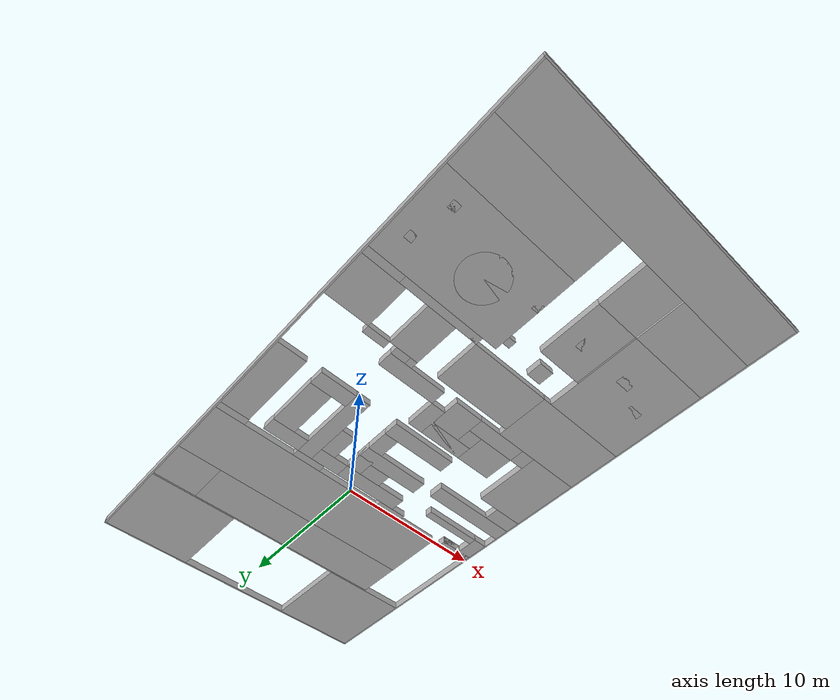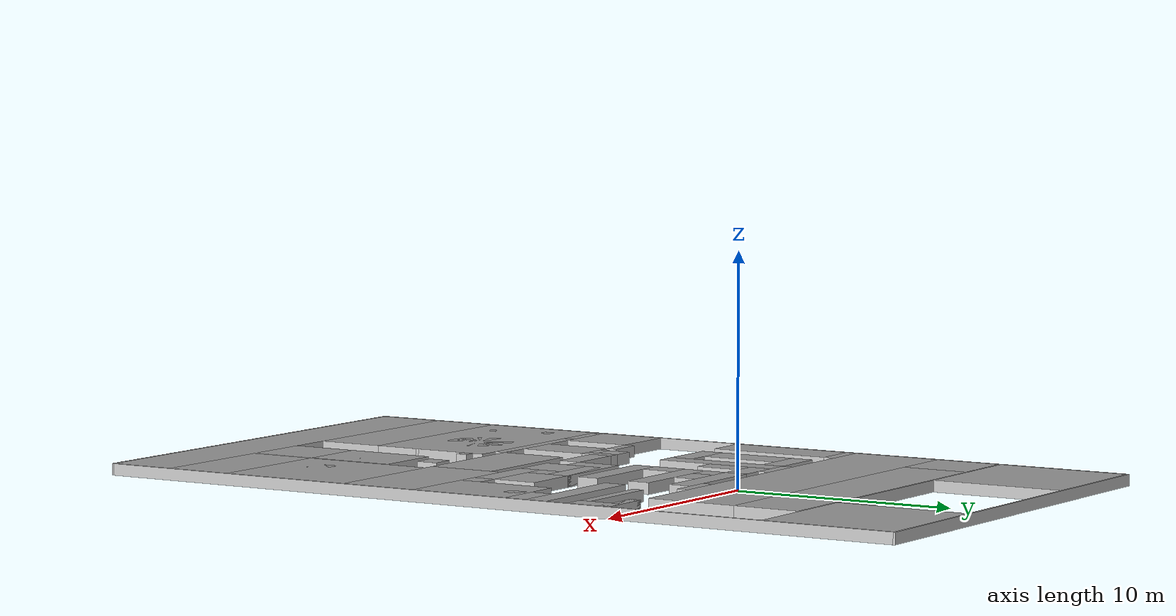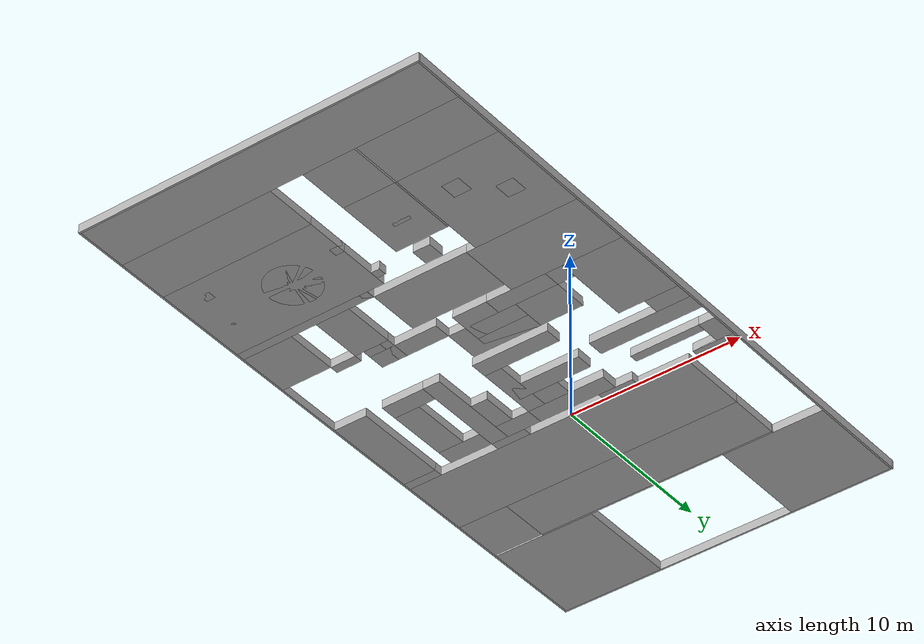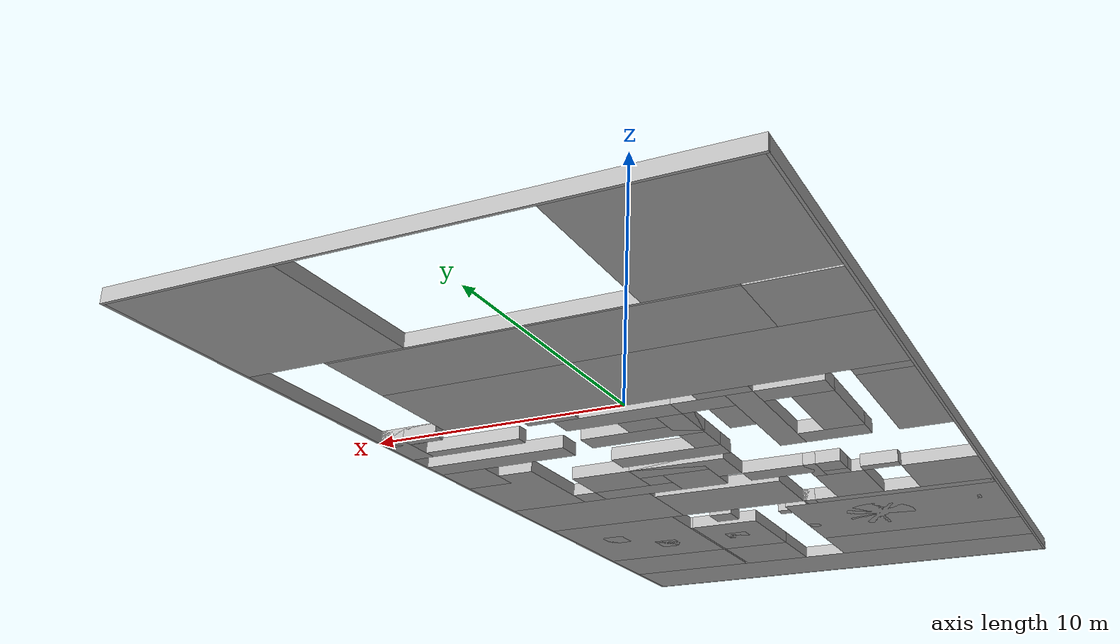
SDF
<sdf version="1.6">
  <model name="floor_plan">
    <static>true</static>
    <link name="link_1_border_bottom">
      <static>true</static>
      <pose>0 -25 0.25 0 0 0</pose>
      <visual name="border_bottom_visual">
        <pose>0 0 0 0 0 0</pose>
        <geometry>
          <mesh>
            <uri>model://floor_plan/meshes/unit_cube.stl</uri>
            <scale>20.1 0.1 0.5</scale>
            </mesh>
          </geometry>
        </visual>
      <collision name="border_bottom_collision">
        <pose>0 0 0 0 0 0</pose>
        <geometry>
          <mesh>
            <uri>model://floor_plan/meshes/unit_cube.stl</uri>
            <scale>20.1 0.1 0.5</scale>
            </mesh>
          </geometry>
        </collision>
      </link>
    <link name="link_2_border_top">
      <static>true</static>
      <pose>0 13 0.25 0 0 0</pose>
      <visual name="border_top_visual">
        <pose>0 0 0 0 0 0</pose>
        <geometry>
          <mesh>
            <uri>model://floor_plan/meshes/unit_cube.stl</uri>
            <scale>20.1 0.1 0.5</scale>
            </mesh>
          </geometry>
        </visual>
      <collision name="border_top_collision">
        <pose>0 0 0 0 0 0</pose>
        <geometry>
          <mesh>
            <uri>model://floor_plan/meshes/unit_cube.stl</uri>
            <scale>20.1 0.1 0.5</scale>
            </mesh>
          </geometry>
        </collision>
      </link>
    <link name="link_3_border_left">
      <static>true</static>
      <pose>-10 -6 0.25 0 0 0</pose>
      <visual name="border_left_visual">
        <pose>0 0 0 0 0 0</pose>
        <geometry>
          <mesh>
            <uri>model://floor_plan/meshes/unit_cube.stl</uri>
            <scale>0.1 37.9 0.5</scale>
            </mesh>
          </geometry>
        </visual>
      <collision name="border_left_collision">
        <pose>0 0 0 0 0 0</pose>
        <geometry>
          <mesh>
            <uri>model://floor_plan/meshes/unit_cube.stl</uri>
            <scale>0.1 37.9 0.5</scale>
            </mesh>
          </geometry>
        </collision>
      </link>
    <link name="link_4_border_right">
      <static>true</static>
      <pose>10 -6 0.25 0 0 0</pose>
      <visual name="border_right_visual">
        <pose>0 0 0 0 0 0</pose>
        <geometry>
          <mesh>
            <uri>model://floor_plan/meshes/unit_cube.stl</uri>
            <scale>0.1 37.9 0.5</scale>
            </mesh>
          </geometry>
        </visual>
      <collision name="border_right_collision">
        <pose>0 0 0 0 0 0</pose>
        <geometry>
          <mesh>
            <uri>model://floor_plan/meshes/unit_cube.stl</uri>
            <scale>0.1 37.9 0.5</scale>
            </mesh>
          </geometry>
        </collision>
      </link>
    <link name="link_5_top_left_col">
      <static>true</static>
      <pose>-6.975 10 0.25 0 0 0</pose>
      <visual name="top_left_col_visual">
        <pose>0 0 0 0 0 0</pose>
        <geometry>
          <mesh>
            <uri>model://floor_plan/meshes/unit_cube.stl</uri>
            <scale>5.95 5.9 0.5</scale>
            </mesh>
          </geometry>
        </visual>
      <collision name="top_left_col_collision">
        <pose>0 0 0 0 0 0</pose>
        <geometry>
          <mesh>
            <uri>model://floor_plan/meshes/unit_cube.stl</uri>
            <scale>5.95 5.9 0.5</scale>
            </mesh>
          </geometry>
        </collision>
      </link>
    <link name="link_6_top_right_col">
      <static>true</static>
      <pose>6.975 10 0.25 0 0 0</pose>
      <visual name="top_right_col_visual">
        <pose>0 0 0 0 0 0</pose>
        <geometry>
          <mesh>
            <uri>model://floor_plan/meshes/unit_cube.stl</uri>
            <scale>5.95 5.9 0.5</scale>
            </mesh>
          </geometry>
        </visual>
      <collision name="top_right_col_collision">
        <pose>0 0 0 0 0 0</pose>
        <geometry>
          <mesh>
            <uri>model://floor_plan/meshes/unit_cube.stl</uri>
            <scale>5.95 5.9 0.5</scale>
            </mesh>
          </geometry>
        </collision>
      </link>
    <link name="link_7_crossbar">
      <static>true</static>
      <pose>0 7 0.25 0 0 0</pose>
      <visual name="crossbar_visual">
        <pose>0 0 0 0 0 0</pose>
        <geometry>
          <mesh>
            <uri>model://floor_plan/meshes/unit_cube.stl</uri>
            <scale>14.0 0.1 0.5</scale>
            </mesh>
          </geometry>
        </visual>
      <collision name="crossbar_collision">
        <pose>0 0 0 0 0 0</pose>
        <geometry>
          <mesh>
            <uri>model://floor_plan/meshes/unit_cube.stl</uri>
            <scale>14.0 0.1 0.5</scale>
            </mesh>
          </geometry>
        </collision>
      </link>
    <link name="link_8_top_left_flange">
      <static>true</static>
      <pose>-8.475 5.475 0.25 0 0 0</pose>
      <visual name="top_left_flange_visual">
        <pose>0 0 0 0 0 0</pose>
        <geometry>
          <mesh>
            <uri>model://floor_plan/meshes/unit_cube.stl</uri>
            <scale>2.95 2.95 0.5</scale>
            </mesh>
          </geometry>
        </visual>
      <collision name="top_left_flange_collision">
        <pose>0 0 0 0 0 0</pose>
        <geometry>
          <mesh>
            <uri>model://floor_plan/meshes/unit_cube.stl</uri>
            <scale>2.95 2.95 0.5</scale>
            </mesh>
          </geometry>
        </collision>
      </link>
    <link name="link_9_top_center_strip">
      <static>true</static>
      <pose>0 5.475 0.25 0 0 0</pose>
      <visual name="top_center_strip_visual">
        <pose>0 0 0 0 0 0</pose>
        <geometry>
          <mesh>
            <uri>model://floor_plan/meshes/unit_cube.stl</uri>
            <scale>14.0 2.95 0.5</scale>
            </mesh>
          </geometry>
        </visual>
      <collision name="top_center_strip_collision">
        <pose>0 0 0 0 0 0</pose>
        <geometry>
          <mesh>
            <uri>model://floor_plan/meshes/unit_cube.stl</uri>
            <scale>14.0 2.95 0.5</scale>
            </mesh>
          </geometry>
        </collision>
      </link>
    <link name="link_10_mid_body_0_4000">
      <static>true</static>
      <pose>-1.475 2 0.25 0 0 0</pose>
      <visual name="mid_body_0_4000_visual">
        <pose>0 0 0 0 0 0</pose>
        <geometry>
          <mesh>
            <uri>model://floor_plan/meshes/unit_cube.stl</uri>
            <scale>16.95 4.0 0.5</scale>
            </mesh>
          </geometry>
        </visual>
      <collision name="mid_body_0_4000_collision">
        <pose>0 0 0 0 0 0</pose>
        <geometry>
          <mesh>
            <uri>model://floor_plan/meshes/unit_cube.stl</uri>
            <scale>16.95 4.0 0.5</scale>
            </mesh>
          </geometry>
        </collision>
      </link>
    <link name="link_11_right_bump">
      <static>true</static>
      <pose>8.3 -0.25 0.25 0 0 0</pose>
      <visual name="right_bump_visual">
        <pose>0 0 0 0 0 0</pose>
        <geometry>
          <mesh>
            <uri>model://floor_plan/meshes/unit_cube.stl</uri>
            <scale>1.4 0.5 0.5</scale>
            </mesh>
          </geometry>
        </visual>
      <collision name="right_bump_collision">
        <pose>0 0 0 0 0 0</pose>
        <geometry>
          <mesh>
            <uri>model://floor_plan/meshes/unit_cube.stl</uri>
            <scale>1.4 0.5 0.5</scale>
            </mesh>
          </geometry>
        </collision>
      </link>
    <link name="link_12_right_col_top">
      <static>true</static>
      <pose>9.475 -1 0.25 0 0 0</pose>
      <visual name="right_col_top_visual">
        <pose>0 0 0 0 0 0</pose>
        <geometry>
          <mesh>
            <uri>model://floor_plan/meshes/unit_cube.stl</uri>
            <scale>0.95 2.0 0.5</scale>
            </mesh>
          </geometry>
        </visual>
      <collision name="right_col_top_collision">
        <pose>0 0 0 0 0 0</pose>
        <geometry>
          <mesh>
            <uri>model://floor_plan/meshes/unit_cube.stl</uri>
            <scale>0.95 2.0 0.5</scale>
            </mesh>
          </geometry>
        </collision>
      </link>
    <link name="link_13_right_mid_bar">
      <static>true</static>
      <pose>7 -1.75 0.25 0 0 0</pose>
      <visual name="right_mid_bar_visual">
        <pose>0 0 0 0 0 0</pose>
        <geometry>
          <mesh>
            <uri>model://floor_plan/meshes/unit_cube.stl</uri>
            <scale>4.0 0.5 0.5</scale>
            </mesh>
          </geometry>
        </visual>
      <collision name="right_mid_bar_collision">
        <pose>0 0 0 0 0 0</pose>
        <geometry>
          <mesh>
            <uri>model://floor_plan/meshes/unit_cube.stl</uri>
            <scale>4.0 0.5 0.5</scale>
            </mesh>
          </geometry>
        </collision>
      </link>
    <link name="link_14_left_strip">
      <static>true</static>
      <pose>-8.975 -3.25 0.25 0 0 0</pose>
      <visual name="left_strip_visual">
        <pose>0 0 0 0 0 0</pose>
        <geometry>
          <mesh>
            <uri>model://floor_plan/meshes/unit_cube.stl</uri>
            <scale>1.95 5.5 0.5</scale>
            </mesh>
          </geometry>
        </visual>
      <collision name="left_strip_collision">
        <pose>0 0 0 0 0 0</pose>
        <geometry>
          <mesh>
            <uri>model://floor_plan/meshes/unit_cube.stl</uri>
            <scale>1.95 5.5 0.5</scale>
            </mesh>
          </geometry>
        </collision>
      </link>
    <link name="link_15_y_neg500_left">
      <static>true</static>
      <pose>-8.975 -0.25 0.25 0 0 0</pose>
      <visual name="y_neg500_left_visual">
        <pose>0 0 0 0 0 0</pose>
        <geometry>
          <mesh>
            <uri>model://floor_plan/meshes/unit_cube.stl</uri>
            <scale>1.95 0.5 0.5</scale>
            </mesh>
          </geometry>
        </visual>
      <collision name="y_neg500_left_collision">
        <pose>0 0 0 0 0 0</pose>
        <geometry>
          <mesh>
            <uri>model://floor_plan/meshes/unit_cube.stl</uri>
            <scale>1.95 0.5 0.5</scale>
            </mesh>
          </geometry>
        </collision>
      </link>
    <link name="link_16_y_neg500_m1">
      <static>true</static>
      <pose>-3.5 -0.25 0.25 0 0 0</pose>
      <visual name="y_neg500_m1_visual">
        <pose>0 0 0 0 0 0</pose>
        <geometry>
          <mesh>
            <uri>model://floor_plan/meshes/unit_cube.stl</uri>
            <scale>2.0 0.5 0.5</scale>
            </mesh>
          </geometry>
        </visual>
      <collision name="y_neg500_m1_collision">
        <pose>0 0 0 0 0 0</pose>
        <geometry>
          <mesh>
            <uri>model://floor_plan/meshes/unit_cube.stl</uri>
            <scale>2.0 0.5 0.5</scale>
            </mesh>
          </geometry>
        </collision>
      </link>
    <link name="link_17_y_neg500_m2">
      <static>true</static>
      <pose>3 -0.25 0.25 0 0 0</pose>
      <visual name="y_neg500_m2_visual">
        <pose>0 0 0 0 0 0</pose>
        <geometry>
          <mesh>
            <uri>model://floor_plan/meshes/unit_cube.stl</uri>
            <scale>2.0 0.5 0.5</scale>
            </mesh>
          </geometry>
        </visual>
      <collision name="y_neg500_m2_collision">
        <pose>0 0 0 0 0 0</pose>
        <geometry>
          <mesh>
            <uri>model://floor_plan/meshes/unit_cube.stl</uri>
            <scale>2.0 0.5 0.5</scale>
            </mesh>
          </geometry>
        </collision>
      </link>
    <link name="link_18_y_neg500_r">
      <static>true</static>
      <pose>8.775 -0.25 0.25 0 0 0</pose>
      <visual name="y_neg500_r_visual">
        <pose>0 0 0 0 0 0</pose>
        <geometry>
          <mesh>
            <uri>model://floor_plan/meshes/unit_cube.stl</uri>
            <scale>2.35 0.5 0.5</scale>
            </mesh>
          </geometry>
        </visual>
      <collision name="y_neg500_r_collision">
        <pose>0 0 0 0 0 0</pose>
        <geometry>
          <mesh>
            <uri>model://floor_plan/meshes/unit_cube.stl</uri>
            <scale>2.35 0.5 0.5</scale>
            </mesh>
          </geometry>
        </collision>
      </link>
    <link name="link_19_D_top">
      <static>true</static>
      <pose>-5.75 -1 0.25 0 0 0</pose>
      <visual name="D_top_visual">
        <pose>0 0 0 0 0 0</pose>
        <geometry>
          <mesh>
            <uri>model://floor_plan/meshes/unit_cube.stl</uri>
            <scale>2.5 1.0 0.5</scale>
            </mesh>
          </geometry>
        </visual>
      <collision name="D_top_collision">
        <pose>0 0 0 0 0 0</pose>
        <geometry>
          <mesh>
            <uri>model://floor_plan/meshes/unit_cube.stl</uri>
            <scale>2.5 1.0 0.5</scale>
            </mesh>
          </geometry>
        </collision>
      </link>
    <link name="link_20_D_bottom">
      <static>true</static>
      <pose>-5.75 -5.5 0.25 0 0 0</pose>
      <visual name="D_bottom_visual">
        <pose>0 0 0 0 0 0</pose>
        <geometry>
          <mesh>
            <uri>model://floor_plan/meshes/unit_cube.stl</uri>
            <scale>2.5 1.0 0.5</scale>
            </mesh>
          </geometry>
        </visual>
      <collision name="D_bottom_collision">
        <pose>0 0 0 0 0 0</pose>
        <geometry>
          <mesh>
            <uri>model://floor_plan/meshes/unit_cube.stl</uri>
            <scale>2.5 1.0 0.5</scale>
            </mesh>
          </geometry>
        </collision>
      </link>
    <link name="link_21_P_left">
      <static>true</static>
      <pose>-4 -3.25 0.25 0 0 0</pose>
      <visual name="P_left_visual">
        <pose>0 0 0 0 0 0</pose>
        <geometry>
          <mesh>
            <uri>model://floor_plan/meshes/unit_cube.stl</uri>
            <scale>1.0 5.5 0.5</scale>
            </mesh>
          </geometry>
        </visual>
      <collision name="P_left_collision">
        <pose>0 0 0 0 0 0</pose>
        <geometry>
          <mesh>
            <uri>model://floor_plan/meshes/unit_cube.stl</uri>
            <scale>1.0 5.5 0.5</scale>
            </mesh>
          </geometry>
        </collision>
      </link>
    <link name="link_22_P_top">
      <static>true</static>
      <pose>-2.5 -1 0.25 0 0 0</pose>
      <visual name="P_top_visual">
        <pose>0 0 0 0 0 0</pose>
        <geometry>
          <mesh>
            <uri>model://floor_plan/meshes/unit_cube.stl</uri>
            <scale>2.0 1.0 0.5</scale>
            </mesh>
          </geometry>
        </visual>
      <collision name="P_top_collision">
        <pose>0 0 0 0 0 0</pose>
        <geometry>
          <mesh>
            <uri>model://floor_plan/meshes/unit_cube.stl</uri>
            <scale>2.0 1.0 0.5</scale>
            </mesh>
          </geometry>
        </collision>
      </link>
    <link name="link_23_P_mid">
      <static>true</static>
      <pose>-3 -2.5 0.25 0 0 0</pose>
      <visual name="P_mid_visual">
        <pose>0 0 0 0 0 0</pose>
        <geometry>
          <mesh>
            <uri>model://floor_plan/meshes/unit_cube.stl</uri>
            <scale>1.0 2.0 0.5</scale>
            </mesh>
          </geometry>
        </visual>
      <collision name="P_mid_collision">
        <pose>0 0 0 0 0 0</pose>
        <geometry>
          <mesh>
            <uri>model://floor_plan/meshes/unit_cube.stl</uri>
            <scale>1.0 2.0 0.5</scale>
            </mesh>
          </geometry>
        </collision>
      </link>
    <link name="link_24_S_top">
      <static>true</static>
      <pose>0.75 -1 0.25 0 0 0</pose>
      <visual name="S_top_visual">
        <pose>0 0 0 0 0 0</pose>
        <geometry>
          <mesh>
            <uri>model://floor_plan/meshes/unit_cube.stl</uri>
            <scale>4.5 1.0 0.5</scale>
            </mesh>
          </geometry>
        </visual>
      <collision name="S_top_collision">
        <pose>0 0 0 0 0 0</pose>
        <geometry>
          <mesh>
            <uri>model://floor_plan/meshes/unit_cube.stl</uri>
            <scale>4.5 1.0 0.5</scale>
            </mesh>
          </geometry>
        </collision>
      </link>
    <link name="link_25_S_mid">
      <static>true</static>
      <pose>0.75 -3 0.25 0 0 0</pose>
      <visual name="S_mid_visual">
        <pose>0 0 0 0 0 0</pose>
        <geometry>
          <mesh>
            <uri>model://floor_plan/meshes/unit_cube.stl</uri>
            <scale>4.5 1.0 0.5</scale>
            </mesh>
          </geometry>
        </visual>
      <collision name="S_mid_collision">
        <pose>0 0 0 0 0 0</pose>
        <geometry>
          <mesh>
            <uri>model://floor_plan/meshes/unit_cube.stl</uri>
            <scale>4.5 1.0 0.5</scale>
            </mesh>
          </geometry>
        </collision>
      </link>
    <link name="link_26_S_bottom">
      <static>true</static>
      <pose>0.75 -5.5 0.25 0 0 0</pose>
      <visual name="S_bottom_visual">
        <pose>0 0 0 0 0 0</pose>
        <geometry>
          <mesh>
            <uri>model://floor_plan/meshes/unit_cube.stl</uri>
            <scale>4.5 1.0 0.5</scale>
            </mesh>
          </geometry>
        </visual>
      <collision name="S_bottom_collision">
        <pose>0 0 0 0 0 0</pose>
        <geometry>
          <mesh>
            <uri>model://floor_plan/meshes/unit_cube.stl</uri>
            <scale>4.5 1.0 0.5</scale>
            </mesh>
          </geometry>
        </collision>
      </link>
    <link name="link_27_right_block_lo">
      <static>true</static>
      <pose>6.725 -11.25 0.25 0 0 0</pose>
      <visual name="right_block_lo_visual">
        <pose>0 0 0 0 0 0</pose>
        <geometry>
          <mesh>
            <uri>model://floor_plan/meshes/unit_cube.stl</uri>
            <scale>6.45 3.5 0.5</scale>
            </mesh>
          </geometry>
        </visual>
      <collision name="right_block_lo_collision">
        <pose>0 0 0 0 0 0</pose>
        <geometry>
          <mesh>
            <uri>model://floor_plan/meshes/unit_cube.stl</uri>
            <scale>6.45 3.5 0.5</scale>
            </mesh>
          </geometry>
        </collision>
      </link>
    <link name="link_28_right_block_hi">
      <static>true</static>
      <pose>8.225 -7.25 0.25 0 0 0</pose>
      <visual name="right_block_hi_visual">
        <pose>0 0 0 0 0 0</pose>
        <geometry>
          <mesh>
            <uri>model://floor_plan/meshes/unit_cube.stl</uri>
            <scale>3.45 4.5 0.5</scale>
            </mesh>
          </geometry>
        </visual>
      <collision name="right_block_hi_collision">
        <pose>0 0 0 0 0 0</pose>
        <geometry>
          <mesh>
            <uri>model://floor_plan/meshes/unit_cube.stl</uri>
            <scale>3.45 4.5 0.5</scale>
            </mesh>
          </geometry>
        </collision>
      </link>
    <link name="link_29_right_stair_bar">
      <static>true</static>
      <pose>6 -9 0.25 0 0 0</pose>
      <visual name="right_stair_bar_visual">
        <pose>0 0 0 0 0 0</pose>
        <geometry>
          <mesh>
            <uri>model://floor_plan/meshes/unit_cube.stl</uri>
            <scale>1.0 1.0 0.5</scale>
            </mesh>
          </geometry>
        </visual>
      <collision name="right_stair_bar_collision">
        <pose>0 0 0 0 0 0</pose>
        <geometry>
          <mesh>
            <uri>model://floor_plan/meshes/unit_cube.stl</uri>
            <scale>1.0 1.0 0.5</scale>
            </mesh>
          </geometry>
        </collision>
      </link>
    <link name="link_30_S_right_top">
      <static>true</static>
      <pose>6.975 -3.5 0.25 0 0 0</pose>
      <visual name="S_right_top_visual">
        <pose>0 0 0 0 0 0</pose>
        <geometry>
          <mesh>
            <uri>model://floor_plan/meshes/unit_cube.stl</uri>
            <scale>5.95 1.0 0.5</scale>
            </mesh>
          </geometry>
        </visual>
      <collision name="S_right_top_collision">
        <pose>0 0 0 0 0 0</pose>
        <geometry>
          <mesh>
            <uri>model://floor_plan/meshes/unit_cube.stl</uri>
            <scale>5.95 1.0 0.5</scale>
            </mesh>
          </geometry>
        </collision>
      </link>
    <link name="link_31_S_right_col">
      <static>true</static>
      <pose>8.975 -5 0.25 0 0 0</pose>
      <visual name="S_right_col_visual">
        <pose>0 0 0 0 0 0</pose>
        <geometry>
          <mesh>
            <uri>model://floor_plan/meshes/unit_cube.stl</uri>
            <scale>1.95 2.0 0.5</scale>
            </mesh>
          </geometry>
        </visual>
      <collision name="S_right_col_collision">
        <pose>0 0 0 0 0 0</pose>
        <geometry>
          <mesh>
            <uri>model://floor_plan/meshes/unit_cube.stl</uri>
            <scale>1.95 2.0 0.5</scale>
            </mesh>
          </geometry>
        </collision>
      </link>
    <link name="link_32_step1">
      <static>true</static>
      <pose>3.75 -9 0.25 0 0 0</pose>
      <visual name="step1_visual">
        <pose>0 0 0 0 0 0</pose>
        <geometry>
          <mesh>
            <uri>model://floor_plan/meshes/unit_cube.stl</uri>
            <scale>3.5 1.0 0.5</scale>
            </mesh>
          </geometry>
        </visual>
      <collision name="step1_collision">
        <pose>0 0 0 0 0 0</pose>
        <geometry>
          <mesh>
            <uri>model://floor_plan/meshes/unit_cube.stl</uri>
            <scale>3.5 1.0 0.5</scale>
            </mesh>
          </geometry>
        </collision>
      </link>
    <link name="link_33_step2">
      <static>true</static>
      <pose>4.25 -7.5 0.25 0 0 0</pose>
      <visual name="step2_visual">
        <pose>0 0 0 0 0 0</pose>
        <geometry>
          <mesh>
            <uri>model://floor_plan/meshes/unit_cube.stl</uri>
            <scale>2.5 2.0 0.5</scale>
            </mesh>
          </geometry>
        </visual>
      <collision name="step2_collision">
        <pose>0 0 0 0 0 0</pose>
        <geometry>
          <mesh>
            <uri>model://floor_plan/meshes/unit_cube.stl</uri>
            <scale>2.5 2.0 0.5</scale>
            </mesh>
          </geometry>
        </collision>
      </link>
    <link name="link_34_step3">
      <static>true</static>
      <pose>1 -8.5 0.25 0 0 0</pose>
      <visual name="step3_visual">
        <pose>0 0 0 0 0 0</pose>
        <geometry>
          <mesh>
            <uri>model://floor_plan/meshes/unit_cube.stl</uri>
            <scale>2.0 2.0 0.5</scale>
            </mesh>
          </geometry>
        </visual>
      <collision name="step3_collision">
        <pose>0 0 0 0 0 0</pose>
        <geometry>
          <mesh>
            <uri>model://floor_plan/meshes/unit_cube.stl</uri>
            <scale>2.0 2.0 0.5</scale>
            </mesh>
          </geometry>
        </collision>
      </link>
    <link name="link_35_step4">
      <static>true</static>
      <pose>1.5 -7 0.25 0 0 0</pose>
      <visual name="step4_visual">
        <pose>0 0 0 0 0 0</pose>
        <geometry>
          <mesh>
            <uri>model://floor_plan/meshes/unit_cube.stl</uri>
            <scale>3.0 1.0 0.5</scale>
            </mesh>
          </geometry>
        </visual>
      <collision name="step4_collision">
        <pose>0 0 0 0 0 0</pose>
        <geometry>
          <mesh>
            <uri>model://floor_plan/meshes/unit_cube.stl</uri>
            <scale>3.0 1.0 0.5</scale>
            </mesh>
          </geometry>
        </collision>
      </link>
    <link name="link_36_low_left_a">
      <static>true</static>
      <pose>-8.725 -13.25 0.25 0 0 0</pose>
      <visual name="low_left_a_visual">
        <pose>0 0 0 0 0 0</pose>
        <geometry>
          <mesh>
            <uri>model://floor_plan/meshes/unit_cube.stl</uri>
            <scale>2.45 0.5 0.5</scale>
            </mesh>
          </geometry>
        </visual>
      <collision name="low_left_a_collision">
        <pose>0 0 0 0 0 0</pose>
        <geometry>
          <mesh>
            <uri>model://floor_plan/meshes/unit_cube.stl</uri>
            <scale>2.45 0.5 0.5</scale>
            </mesh>
          </geometry>
        </collision>
      </link>
    <link name="link_37_low_left_b">
      <static>true</static>
      <pose>-8.475 -11.5 0.25 0 0 0</pose>
      <visual name="low_left_b_visual">
        <pose>0 0 0 0 0 0</pose>
        <geometry>
          <mesh>
            <uri>model://floor_plan/meshes/unit_cube.stl</uri>
            <scale>2.95 3.0 0.5</scale>
            </mesh>
          </geometry>
        </visual>
      <collision name="low_left_b_collision">
        <pose>0 0 0 0 0 0</pose>
        <geometry>
          <mesh>
            <uri>model://floor_plan/meshes/unit_cube.stl</uri>
            <scale>2.95 3.0 0.5</scale>
            </mesh>
          </geometry>
        </collision>
      </link>
    <link name="link_38_low_mid_b">
      <static>true</static>
      <pose>-4.5 -11.5 0.25 0 0 0</pose>
      <visual name="low_mid_b_visual">
        <pose>0 0 0 0 0 0</pose>
        <geometry>
          <mesh>
            <uri>model://floor_plan/meshes/unit_cube.stl</uri>
            <scale>2.0 3.0 0.5</scale>
            </mesh>
          </geometry>
        </visual>
      <collision name="low_mid_b_collision">
        <pose>0 0 0 0 0 0</pose>
        <geometry>
          <mesh>
            <uri>model://floor_plan/meshes/unit_cube.stl</uri>
            <scale>2.0 3.0 0.5</scale>
            </mesh>
          </geometry>
        </collision>
      </link>
    <link name="link_39_low_right_lo">
      <static>true</static>
      <pose>0.75 -11.5 0.25 0 0 0</pose>
      <visual name="low_right_lo_visual">
        <pose>0 0 0 0 0 0</pose>
        <geometry>
          <mesh>
            <uri>model://floor_plan/meshes/unit_cube.stl</uri>
            <scale>5.5 3.0 0.5</scale>
            </mesh>
          </geometry>
        </visual>
      <collision name="low_right_lo_collision">
        <pose>0 0 0 0 0 0</pose>
        <geometry>
          <mesh>
            <uri>model://floor_plan/meshes/unit_cube.stl</uri>
            <scale>5.5 3.0 0.5</scale>
            </mesh>
          </geometry>
        </collision>
      </link>
    <link name="link_40_low_step_r">
      <static>true</static>
      <pose>-2.25 -13.25 0.25 0 0 0</pose>
      <visual name="low_step_r_visual">
        <pose>0 0 0 0 0 0</pose>
        <geometry>
          <mesh>
            <uri>model://floor_plan/meshes/unit_cube.stl</uri>
            <scale>0.5 0.5 0.5</scale>
            </mesh>
          </geometry>
        </visual>
      <collision name="low_step_r_collision">
        <pose>0 0 0 0 0 0</pose>
        <geometry>
          <mesh>
            <uri>model://floor_plan/meshes/unit_cube.stl</uri>
            <scale>0.5 0.5 0.5</scale>
            </mesh>
          </geometry>
        </collision>
      </link>
    <link name="link_41_step_conn">
      <static>true</static>
      <pose>-6.25 -9.75 0.25 0 0 0</pose>
      <visual name="step_conn_visual">
        <pose>0 0 0 0 0 0</pose>
        <geometry>
          <mesh>
            <uri>model://floor_plan/meshes/unit_cube.stl</uri>
            <scale>1.5 0.5 0.5</scale>
            </mesh>
          </geometry>
        </visual>
      <collision name="step_conn_collision">
        <pose>0 0 0 0 0 0</pose>
        <geometry>
          <mesh>
            <uri>model://floor_plan/meshes/unit_cube.stl</uri>
            <scale>1.5 0.5 0.5</scale>
            </mesh>
          </geometry>
        </collision>
      </link>
    <link name="link_42_step_conn2">
      <static>true</static>
      <pose>-4.5 -9.75 0.25 0 0 0</pose>
      <visual name="step_conn2_visual">
        <pose>0 0 0 0 0 0</pose>
        <geometry>
          <mesh>
            <uri>model://floor_plan/meshes/unit_cube.stl</uri>
            <scale>1.0 0.5 0.5</scale>
            </mesh>
          </geometry>
        </visual>
      <collision name="step_conn2_collision">
        <pose>0 0 0 0 0 0</pose>
        <geometry>
          <mesh>
            <uri>model://floor_plan/meshes/unit_cube.stl</uri>
            <scale>1.0 0.5 0.5</scale>
            </mesh>
          </geometry>
        </collision>
      </link>
    <link name="link_43_step_v">
      <static>true</static>
      <pose>-3.75 -9.25 0.25 0 0 0</pose>
      <visual name="step_v_visual">
        <pose>0 0 0 0 0 0</pose>
        <geometry>
          <mesh>
            <uri>model://floor_plan/meshes/unit_cube.stl</uri>
            <scale>0.5 1.5 0.5</scale>
            </mesh>
          </geometry>
        </visual>
      <collision name="step_v_collision">
        <pose>0 0 0 0 0 0</pose>
        <geometry>
          <mesh>
            <uri>model://floor_plan/meshes/unit_cube.stl</uri>
            <scale>0.5 1.5 0.5</scale>
            </mesh>
          </geometry>
        </collision>
      </link>
    <link name="link_44_mid_bar">
      <static>true</static>
      <pose>-3 -9 0.25 0 0 0</pose>
      <visual name="mid_bar_visual">
        <pose>0 0 0 0 0 0</pose>
        <geometry>
          <mesh>
            <uri>model://floor_plan/meshes/unit_cube.stl</uri>
            <scale>4.0 1.0 0.5</scale>
            </mesh>
          </geometry>
        </visual>
      <collision name="mid_bar_collision">
        <pose>0 0 0 0 0 0</pose>
        <geometry>
          <mesh>
            <uri>model://floor_plan/meshes/unit_cube.stl</uri>
            <scale>4.0 1.0 0.5</scale>
            </mesh>
          </geometry>
        </collision>
      </link>
    <link name="link_45_mid_lo">
      <static>true</static>
      <pose>1 -7.5 0.25 0 0 0</pose>
      <visual name="mid_lo_visual">
        <pose>0 0 0 0 0 0</pose>
        <geometry>
          <mesh>
            <uri>model://floor_plan/meshes/unit_cube.stl</uri>
            <scale>4.0 2.0 0.5</scale>
            </mesh>
          </geometry>
        </visual>
      <collision name="mid_lo_collision">
        <pose>0 0 0 0 0 0</pose>
        <geometry>
          <mesh>
            <uri>model://floor_plan/meshes/unit_cube.stl</uri>
            <scale>4.0 2.0 0.5</scale>
            </mesh>
          </geometry>
        </collision>
      </link>
    <link name="link_46_bot_full_strip">
      <static>true</static>
      <pose>0 -23.475 0.25 0 0 0</pose>
      <visual name="bot_full_strip_visual">
        <pose>0 0 0 0 0 0</pose>
        <geometry>
          <mesh>
            <uri>model://floor_plan/meshes/unit_cube.stl</uri>
            <scale>19.9 2.95 0.5</scale>
            </mesh>
          </geometry>
        </visual>
      <collision name="bot_full_strip_collision">
        <pose>0 0 0 0 0 0</pose>
        <geometry>
          <mesh>
            <uri>model://floor_plan/meshes/unit_cube.stl</uri>
            <scale>19.9 2.95 0.5</scale>
            </mesh>
          </geometry>
        </collision>
      </link>
    <link name="link_47_bot_left">
      <static>true</static>
      <pose>-5.475 -20.5 0.25 0 0 0</pose>
      <visual name="bot_left_visual">
        <pose>0 0 0 0 0 0</pose>
        <geometry>
          <mesh>
            <uri>model://floor_plan/meshes/unit_cube.stl</uri>
            <scale>8.95 3.0 0.5</scale>
            </mesh>
          </geometry>
        </visual>
      <collision name="bot_left_collision">
        <pose>0 0 0 0 0 0</pose>
        <geometry>
          <mesh>
            <uri>model://floor_plan/meshes/unit_cube.stl</uri>
            <scale>8.95 3.0 0.5</scale>
            </mesh>
          </geometry>
        </collision>
      </link>
    <link name="link_48_bot_mid_right">
      <static>true</static>
      <pose>2.432 -20.5 0.25 0 0 0</pose>
      <visual name="bot_mid_right_visual">
        <pose>0 0 0 0 0 0</pose>
        <geometry>
          <mesh>
            <uri>model://floor_plan/meshes/unit_cube.stl</uri>
            <scale>3.035 3.0 0.5</scale>
            </mesh>
          </geometry>
        </visual>
      <collision name="bot_mid_right_collision">
        <pose>0 0 0 0 0 0</pose>
        <geometry>
          <mesh>
            <uri>model://floor_plan/meshes/unit_cube.stl</uri>
            <scale>3.035 3.0 0.5</scale>
            </mesh>
          </geometry>
        </collision>
      </link>
    <link name="link_49_bot_right_1">
      <static>true</static>
      <pose>7 -20.5 0.25 0 0 0</pose>
      <visual name="bot_right_1_visual">
        <pose>0 0 0 0 0 0</pose>
        <geometry>
          <mesh>
            <uri>model://floor_plan/meshes/unit_cube.stl</uri>
            <scale>5.9 3.0 0.5</scale>
            </mesh>
          </geometry>
        </visual>
      <collision name="bot_right_1_collision">
        <pose>0 0 0 0 0 0</pose>
        <geometry>
          <mesh>
            <uri>model://floor_plan/meshes/unit_cube.stl</uri>
            <scale>5.9 3.0 0.5</scale>
            </mesh>
          </geometry>
        </collision>
      </link>
    <link name="link_50_thin_vert">
      <static>true</static>
      <pose>4 -17 0.25 0 0 0</pose>
      <visual name="thin_vert_visual">
        <pose>0 0 0 0 0 0</pose>
        <geometry>
          <mesh>
            <uri>model://floor_plan/meshes/unit_cube.stl</uri>
            <scale>0.1 4.0 0.5</scale>
            </mesh>
          </geometry>
        </visual>
      <collision name="thin_vert_collision">
        <pose>0 0 0 0 0 0</pose>
        <geometry>
          <mesh>
            <uri>model://floor_plan/meshes/unit_cube.stl</uri>
            <scale>0.1 4.0 0.5</scale>
            </mesh>
          </geometry>
        </collision>
      </link>
    <link name="link_51_right_col">
      <static>true</static>
      <pose>7 -16 0.25 0 0 0</pose>
      <visual name="right_col_visual">
        <pose>0 0 0 0 0 0</pose>
        <geometry>
          <mesh>
            <uri>model://floor_plan/meshes/unit_cube.stl</uri>
            <scale>5.9 6.0 0.5</scale>
            </mesh>
          </geometry>
        </visual>
      <collision name="right_col_collision">
        <pose>0 0 0 0 0 0</pose>
        <geometry>
          <mesh>
            <uri>model://floor_plan/meshes/unit_cube.stl</uri>
            <scale>5.9 6.0 0.5</scale>
            </mesh>
          </geometry>
        </collision>
      </link>
    <link name="link_52_bot_connector_L">
      <static>true</static>
      <pose>-5.475 -16.25 0.25 0 0 0</pose>
      <visual name="bot_connector_L_visual">
        <pose>0 0 0 0 0 0</pose>
        <geometry>
          <mesh>
            <uri>model://floor_plan/meshes/unit_cube.stl</uri>
            <scale>8.95 5.5 0.5</scale>
            </mesh>
          </geometry>
        </visual>
      <collision name="bot_connector_L_collision">
        <pose>0 0 0 0 0 0</pose>
        <geometry>
          <mesh>
            <uri>model://floor_plan/meshes/unit_cube.stl</uri>
            <scale>8.95 5.5 0.5</scale>
            </mesh>
          </geometry>
        </collision>
      </link>
    <link name="link_53_bot_connector_R">
      <static>true</static>
      <pose>2.432 -17 0.25 0 0 0</pose>
      <visual name="bot_connector_R_visual">
        <pose>0 0 0 0 0 0</pose>
        <geometry>
          <mesh>
            <uri>model://floor_plan/meshes/unit_cube.stl</uri>
            <scale>3.035 4.0 0.5</scale>
            </mesh>
          </geometry>
        </visual>
      <collision name="bot_connector_R_collision">
        <pose>0 0 0 0 0 0</pose>
        <geometry>
          <mesh>
            <uri>model://floor_plan/meshes/unit_cube.stl</uri>
            <scale>3.035 4.0 0.5</scale>
            </mesh>
          </geometry>
        </collision>
      </link>
    <link name="link_54_left_col_step">
      <static>true</static>
      <pose>-5.975 -13.25 0.25 0 0 0</pose>
      <visual name="left_col_step_visual">
        <pose>0 0 0 0 0 0</pose>
        <geometry>
          <mesh>
            <uri>model://floor_plan/meshes/unit_cube.stl</uri>
            <scale>7.95 0.5 0.5</scale>
            </mesh>
          </geometry>
        </visual>
      <collision name="left_col_step_collision">
        <pose>0 0 0 0 0 0</pose>
        <geometry>
          <mesh>
            <uri>model://floor_plan/meshes/unit_cube.stl</uri>
            <scale>7.95 0.5 0.5</scale>
            </mesh>
          </geometry>
        </collision>
      </link>
    <link name="link_55_circle_island">
      <static>true</static>
      <pose>-4.502 -16 0.25 0 0 0</pose>
      <visual name="circle_island_visual">
        <pose>0 0 0 0 0 0</pose>
        <geometry>
          <mesh>
            <uri>model://floor_plan/meshes/unit_cylinder.stl</uri>
            <scale>2.996 2.996 0.5</scale>
            </mesh>
          </geometry>
        </visual>
      <collision name="circle_island_collision">
        <pose>0 0 0 0 0 0</pose>
        <geometry>
          <mesh>
            <uri>model://floor_plan/meshes/unit_cylinder.stl</uri>
            <scale>2.996 2.996 0.5</scale>
            </mesh>
          </geometry>
        </collision>
      </link>
    <link name="link_56_island_1">
      <static>true</static>
      <pose>-8.25 -17.75 0.25 0 0 0</pose>
      <visual name="island_1_visual">
        <pose>0 0 0 0 0 0</pose>
        <geometry>
          <mesh>
            <uri>model://floor_plan/meshes/unit_cube.stl</uri>
            <scale>0.5 0.5 0.5</scale>
            </mesh>
          </geometry>
        </visual>
      <collision name="island_1_collision">
        <pose>0 0 0 0 0 0</pose>
        <geometry>
          <mesh>
            <uri>model://floor_plan/meshes/unit_cube.stl</uri>
            <scale>0.5 0.5 0.5</scale>
            </mesh>
          </geometry>
        </collision>
      </link>
    <link name="link_57_island_2">
      <static>true</static>
      <pose>2.5 -17 0.25 0 0 0</pose>
      <visual name="island_2_visual">
        <pose>0 0 0 0 0 0</pose>
        <geometry>
          <mesh>
            <uri>model://floor_plan/meshes/unit_cube.stl</uri>
            <scale>1.0 1.0 0.5</scale>
            </mesh>
          </geometry>
        </visual>
      <collision name="island_2_collision">
        <pose>0 0 0 0 0 0</pose>
        <geometry>
          <mesh>
            <uri>model://floor_plan/meshes/unit_cube.stl</uri>
            <scale>1.0 1.0 0.5</scale>
            </mesh>
          </geometry>
        </collision>
      </link>
    <link name="link_58_island_3">
      <static>true</static>
      <pose>6 -17 0.25 0 0 0</pose>
      <visual name="island_3_visual">
        <pose>0 0 0 0 0 0</pose>
        <geometry>
          <mesh>
            <uri>model://floor_plan/meshes/unit_cube.stl</uri>
            <scale>1.0 1.0 0.5</scale>
            </mesh>
          </geometry>
        </visual>
      <collision name="island_3_collision">
        <pose>0 0 0 0 0 0</pose>
        <geometry>
          <mesh>
            <uri>model://floor_plan/meshes/unit_cube.stl</uri>
            <scale>1.0 1.0 0.5</scale>
            </mesh>
          </geometry>
        </collision>
      </link>
    <link name="link_59_island_4">
      <static>true</static>
      <pose>-1.25 -16.75 0.25 0 0 0</pose>
      <visual name="island_4_visual">
        <pose>0 0 0 0 0 0</pose>
        <geometry>
          <mesh>
            <uri>model://floor_plan/meshes/unit_cube.stl</uri>
            <scale>0.5 0.5 0.5</scale>
            </mesh>
          </geometry>
        </visual>
      <collision name="island_4_collision">
        <pose>0 0 0 0 0 0</pose>
        <geometry>
          <mesh>
            <uri>model://floor_plan/meshes/unit_cube.stl</uri>
            <scale>0.5 0.5 0.5</scale>
            </mesh>
          </geometry>
        </collision>
      </link>
    <link name="link_60_island_5">
      <static>true</static>
      <pose>8 -15.5 0.25 0 0 0</pose>
      <visual name="island_5_visual">
        <pose>0 0 0 0 0 0</pose>
        <geometry>
          <mesh>
            <uri>model://floor_plan/meshes/unit_cube.stl</uri>
            <scale>1.0 1.0 0.5</scale>
            </mesh>
          </geometry>
        </visual>
      <collision name="island_5_collision">
        <pose>0 0 0 0 0 0</pose>
        <geometry>
          <mesh>
            <uri>model://floor_plan/meshes/unit_cube.stl</uri>
            <scale>1.0 1.0 0.5</scale>
            </mesh>
          </geometry>
        </collision>
      </link>
    <link name="link_61_island_6">
      <static>true</static>
      <pose>-8.75 -15.25 0.25 0 0 0</pose>
      <visual name="island_6_visual">
        <pose>0 0 0 0 0 0</pose>
        <geometry>
          <mesh>
            <uri>model://floor_plan/meshes/unit_cube.stl</uri>
            <scale>0.5 0.5 0.5</scale>
            </mesh>
          </geometry>
        </visual>
      <collision name="island_6_collision">
        <pose>0 0 0 0 0 0</pose>
        <geometry>
          <mesh>
            <uri>model://floor_plan/meshes/unit_cube.stl</uri>
            <scale>0.5 0.5 0.5</scale>
            </mesh>
          </geometry>
        </collision>
      </link>
    <link name="link_62_island_7">
      <static>true</static>
      <pose>-0.75 -14.25 0.25 0 0 0</pose>
      <visual name="island_7_visual">
        <pose>0 0 0 0 0 0</pose>
        <geometry>
          <mesh>
            <uri>model://floor_plan/meshes/unit_cube.stl</uri>
            <scale>0.5 0.5 0.5</scale>
            </mesh>
          </geometry>
        </visual>
      <collision name="island_7_collision">
        <pose>0 0 0 0 0 0</pose>
        <geometry>
          <mesh>
            <uri>model://floor_plan/meshes/unit_cube.stl</uri>
            <scale>0.5 0.5 0.5</scale>
            </mesh>
          </geometry>
        </collision>
      </link>
    <link name="link_63_island_8">
      <static>true</static>
      <pose>2 -14 0.25 0 0 0</pose>
      <visual name="island_8_visual">
        <pose>0 0 0 0 0 0</pose>
        <geometry>
          <mesh>
            <uri>model://floor_plan/meshes/unit_cube.stl</uri>
            <scale>1.0 1.0 0.5</scale>
            </mesh>
          </geometry>
        </visual>
      <collision name="island_8_collision">
        <pose>0 0 0 0 0 0</pose>
        <geometry>
          <mesh>
            <uri>model://floor_plan/meshes/unit_cube.stl</uri>
            <scale>1.0 1.0 0.5</scale>
            </mesh>
          </geometry>
        </collision>
      </link>
    <link name="link_64_rect_island">
      <static>true</static>
      <pose>-6.25 -3.25 0.25 0 0 0</pose>
      <visual name="rect_island_visual">
        <pose>0 0 0 0 0 0</pose>
        <geometry>
          <mesh>
            <uri>model://floor_plan/meshes/unit_cube.stl</uri>
            <scale>1.5 3.5 0.5</scale>
            </mesh>
          </geometry>
        </visual>
      <collision name="rect_island_collision">
        <pose>0 0 0 0 0 0</pose>
        <geometry>
          <mesh>
            <uri>model://floor_plan/meshes/unit_cube.stl</uri>
            <scale>1.5 3.5 0.5</scale>
            </mesh>
          </geometry>
        </collision>
      </link>
    <link name="link_65_L_vert">
      <static>true</static>
      <pose>-1 -3.25 0.25 0 0 0</pose>
      <visual name="L_vert_visual">
        <pose>0 0 0 0 0 0</pose>
        <geometry>
          <mesh>
            <uri>model://floor_plan/meshes/unit_cube.stl</uri>
            <scale>1.0 3.5 0.5</scale>
            </mesh>
          </geometry>
        </visual>
      <collision name="L_vert_collision">
        <pose>0 0 0 0 0 0</pose>
        <geometry>
          <mesh>
            <uri>model://floor_plan/meshes/unit_cube.stl</uri>
            <scale>1.0 3.5 0.5</scale>
            </mesh>
          </geometry>
        </collision>
      </link>
    <link name="link_66_L_horiz">
      <static>true</static>
      <pose>0.25 -2 0.25 0 0 0</pose>
      <visual name="L_horiz_visual">
        <pose>0 0 0 0 0 0</pose>
        <geometry>
          <mesh>
            <uri>model://floor_plan/meshes/unit_cube.stl</uri>
            <scale>1.5 1.0 0.5</scale>
            </mesh>
          </geometry>
        </visual>
      <collision name="L_horiz_collision">
        <pose>0 0 0 0 0 0</pose>
        <geometry>
          <mesh>
            <uri>model://floor_plan/meshes/unit_cube.stl</uri>
            <scale>1.5 1.0 0.5</scale>
            </mesh>
          </geometry>
        </collision>
      </link>
    </model>
  </sdf>
